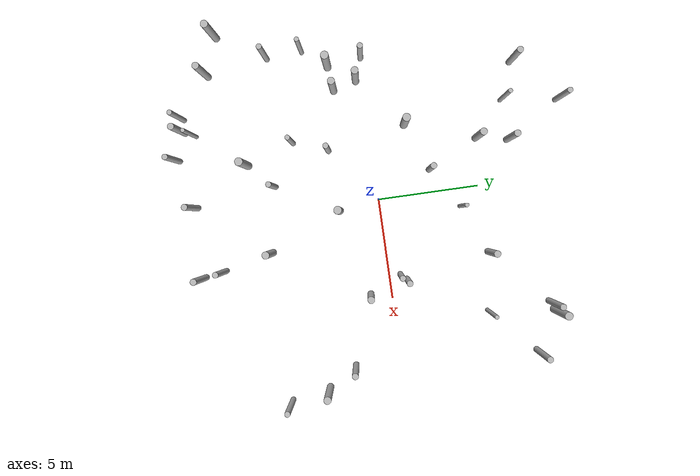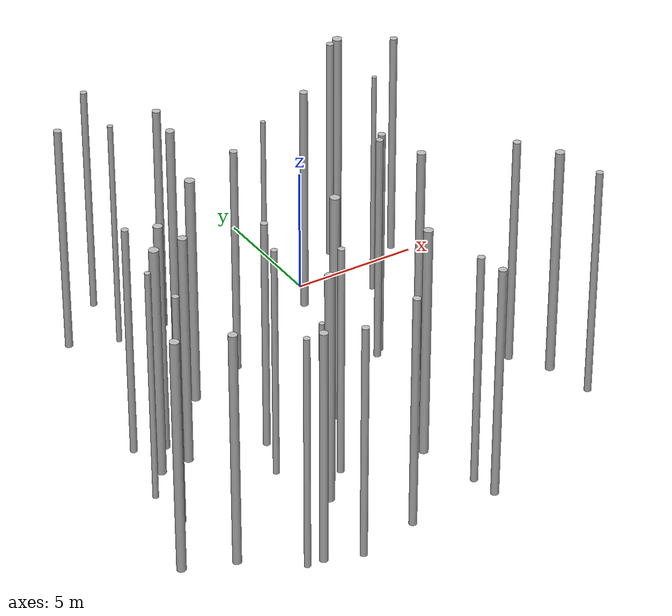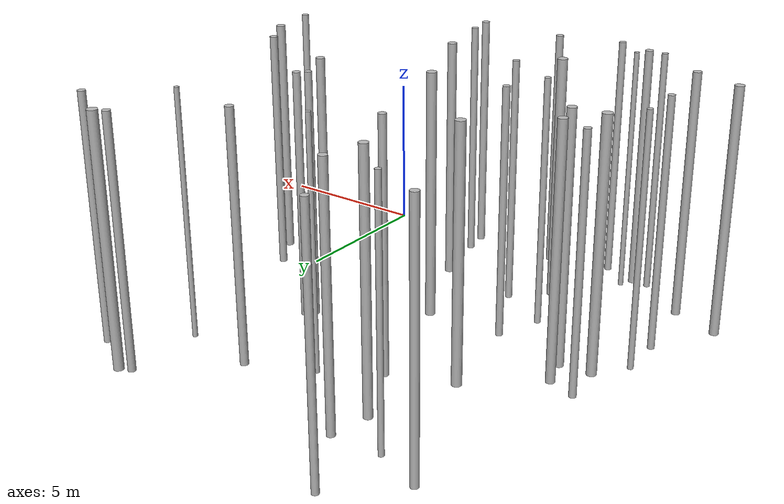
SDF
<sdf version="1.4">
 <world name="default">
  <scene><shadows>false</shadows></scene>
  <model name="forest">
   <static>true</static>
   <link name="tree0">
    <pose>-3.7054690622155873 1.866800743826948 0 0 0 5.804549705480051</pose>
    <visual name="visual">
     <material>
      <script><uri>model://tree_simple/scripts</uri><uri>model://tree_simple/materials/textures</uri></script>
     </material>
     <geometry><cylinder><radius>0.19890831710415502</radius><length>10</length></cylinder></geometry>
    </visual>
    <collision name="collision">
     <geometry><cylinder><radius>0.19890831710415502</radius><length>10</length></cylinder></geometry>
     <max_contacts>0</max_contacts>
    </collision>
   </link>
   <link name="tree1">
    <pose>-2.714504667197078 -6.461140196826831 0 0 0 3.347703830257915</pose>
    <visual name="visual">
     <material>
      <script><uri>model://tree_simple/scripts</uri><uri>model://tree_simple/materials/textures</uri></script>
     </material>
     <geometry><cylinder><radius>0.19965619902999285</radius><length>10</length></cylinder></geometry>
    </visual>
    <collision name="collision">
     <geometry><cylinder><radius>0.19965619902999285</radius><length>10</length></cylinder></geometry>
     <max_contacts>0</max_contacts>
    </collision>
   </link>
   <link name="tree2">
    <pose>-6.301222954647521 -0.303916810994739 0 0 0 1.6390963417453464</pose>
    <visual name="visual">
     <material>
      <script><uri>model://tree_simple/scripts</uri><uri>model://tree_simple/materials/textures</uri></script>
     </material>
     <geometry><cylinder><radius>0.18194292359758646</radius><length>10</length></cylinder></geometry>
    </visual>
    <collision name="collision">
     <geometry><cylinder><radius>0.18194292359758646</radius><length>10</length></cylinder></geometry>
     <max_contacts>0</max_contacts>
    </collision>
   </link>
   <link name="tree3">
    <pose>3.438585030909307 5.290952545253651 0 0 0 0.5235706975836255</pose>
    <visual name="visual">
     <material>
      <script><uri>model://tree_simple/scripts</uri><uri>model://tree_simple/materials/textures</uri></script>
     </material>
     <geometry><cylinder><radius>0.16524153091901406</radius><length>10</length></cylinder></geometry>
    </visual>
    <collision name="collision">
     <geometry><cylinder><radius>0.16524153091901406</radius><length>10</length></cylinder></geometry>
     <max_contacts>0</max_contacts>
    </collision>
   </link>
   <link name="tree4">
    <pose>8.84868305739024 7.101177344443421 0 0 0 1.6796642341159929</pose>
    <visual name="visual">
     <material>
      <script><uri>model://tree_simple/scripts</uri><uri>model://tree_simple/materials/textures</uri></script>
     </material>
     <geometry><cylinder><radius>0.15391808578517832</radius><length>10</length></cylinder></geometry>
    </visual>
    <collision name="collision">
     <geometry><cylinder><radius>0.15391808578517832</radius><length>10</length></cylinder></geometry>
     <max_contacts>0</max_contacts>
    </collision>
   </link>
   <link name="tree5">
    <pose>-2.203271638021964 7.068457619246292 0 0 0 4.871302215672386</pose>
    <visual name="visual">
     <material>
      <script><uri>model://tree_simple/scripts</uri><uri>model://tree_simple/materials/textures</uri></script>
     </material>
     <geometry><cylinder><radius>0.16437061227792388</radius><length>10</length></cylinder></geometry>
    </visual>
    <collision name="collision">
     <geometry><cylinder><radius>0.16437061227792388</radius><length>10</length></cylinder></geometry>
     <max_contacts>0</max_contacts>
    </collision>
   </link>
   <link name="tree6">
    <pose>-9.531246761644619 -7.186104687811863 0 0 0 1.4221703616563786</pose>
    <visual name="visual">
     <material>
      <script><uri>model://tree_simple/scripts</uri><uri>model://tree_simple/materials/textures</uri></script>
     </material>
     <geometry><cylinder><radius>0.1851797984901979</radius><length>10</length></cylinder></geometry>
    </visual>
    <collision name="collision">
     <geometry><cylinder><radius>0.1851797984901979</radius><length>10</length></cylinder></geometry>
     <max_contacts>0</max_contacts>
    </collision>
   </link>
   <link name="tree7">
    <pose>-7.231862262141025 -1.6494307902408316 0 0 0 4.610970842492324</pose>
    <visual name="visual">
     <material>
      <script><uri>model://tree_simple/scripts</uri><uri>model://tree_simple/materials/textures</uri></script>
     </material>
     <geometry><cylinder><radius>0.1981163060144035</radius><length>10</length></cylinder></geometry>
    </visual>
    <collision name="collision">
     <geometry><cylinder><radius>0.1981163060144035</radius><length>10</length></cylinder></geometry>
     <max_contacts>0</max_contacts>
    </collision>
   </link>
   <link name="tree8">
    <pose>-1.4274124206023924 -5.192854360500723 0 0 0 0.9032130742766348</pose>
    <visual name="visual">
     <material>
      <script><uri>model://tree_simple/scripts</uri><uri>model://tree_simple/materials/textures</uri></script>
     </material>
     <geometry><cylinder><radius>0.13886989372928207</radius><length>10</length></cylinder></geometry>
    </visual>
    <collision name="collision">
     <geometry><cylinder><radius>0.13886989372928207</radius><length>10</length></cylinder></geometry>
     <max_contacts>0</max_contacts>
    </collision>
   </link>
   <link name="tree9">
    <pose>-4.853930498597037 -9.465449644623023 0 0 0 0.08788762137628149</pose>
    <visual name="visual">
     <material>
      <script><uri>model://tree_simple/scripts</uri><uri>model://tree_simple/materials/textures</uri></script>
     </material>
     <geometry><cylinder><radius>0.164518036162344</radius><length>10</length></cylinder></geometry>
    </visual>
    <collision name="collision">
     <geometry><cylinder><radius>0.164518036162344</radius><length>10</length></cylinder></geometry>
     <max_contacts>0</max_contacts>
    </collision>
   </link>
   <link name="tree10">
    <pose>6.455557795365433 4.83991575597533 0 0 0 3.74936611095947</pose>
    <visual name="visual">
     <material>
      <script><uri>model://tree_simple/scripts</uri><uri>model://tree_simple/materials/textures</uri></script>
     </material>
     <geometry><cylinder><radius>0.10195199367516689</radius><length>10</length></cylinder></geometry>
    </visual>
    <collision name="collision">
     <geometry><cylinder><radius>0.10195199367516689</radius><length>10</length></cylinder></geometry>
     <max_contacts>0</max_contacts>
    </collision>
   </link>
   <link name="tree11">
    <pose>1.9475635512469385 -5.802271606525203 0 0 0 2.376130627063933</pose>
    <visual name="visual">
     <material>
      <script><uri>model://tree_simple/scripts</uri><uri>model://tree_simple/materials/textures</uri></script>
     </material>
     <geometry><cylinder><radius>0.18403978422131714</radius><length>10</length></cylinder></geometry>
    </visual>
    <collision name="collision">
     <geometry><cylinder><radius>0.18403978422131714</radius><length>10</length></cylinder></geometry>
     <max_contacts>0</max_contacts>
    </collision>
   </link>
   <link name="tree12">
    <pose>6.889439658202964 8.289270975436235 0 0 0 1.8561052450899536</pose>
    <visual name="visual">
     <material>
      <script><uri>model://tree_simple/scripts</uri><uri>model://tree_simple/materials/textures</uri></script>
     </material>
     <geometry><cylinder><radius>0.1993785757445766</radius><length>10</length></cylinder></geometry>
    </visual>
    <collision name="collision">
     <geometry><cylinder><radius>0.1993785757445766</radius><length>10</length></cylinder></geometry>
     <max_contacts>0</max_contacts>
    </collision>
   </link>
   <link name="tree13">
    <pose>2.7381119747175156 -9.435312867774464 0 0 0 1.2373634190251286</pose>
    <visual name="visual">
     <material>
      <script><uri>model://tree_simple/scripts</uri><uri>model://tree_simple/materials/textures</uri></script>
     </material>
     <geometry><cylinder><radius>0.16102620036566262</radius><length>10</length></cylinder></geometry>
    </visual>
    <collision name="collision">
     <geometry><cylinder><radius>0.16102620036566262</radius><length>10</length></cylinder></geometry>
     <max_contacts>0</max_contacts>
    </collision>
   </link>
   <link name="tree14">
    <pose>6.420924253008337 8.079671313987475 0 0 0 2.5298067317571733</pose>
    <visual name="visual">
     <material>
      <script><uri>model://tree_simple/scripts</uri><uri>model://tree_simple/materials/textures</uri></script>
     </material>
     <geometry><cylinder><radius>0.1565289312874229</radius><length>10</length></cylinder></geometry>
    </visual>
    <collision name="collision">
     <geometry><cylinder><radius>0.1565289312874229</radius><length>10</length></cylinder></geometry>
     <max_contacts>0</max_contacts>
    </collision>
   </link>
   <link name="tree15">
    <pose>-4.5934208573830055 -8.923357269711508 0 0 0 5.396048967261554</pose>
    <visual name="visual">
     <material>
      <script><uri>model://tree_simple/scripts</uri><uri>model://tree_simple/materials/textures</uri></script>
     </material>
     <geometry><cylinder><radius>0.10234378218040922</radius><length>10</length></cylinder></geometry>
    </visual>
    <collision name="collision">
     <geometry><cylinder><radius>0.10234378218040922</radius><length>10</length></cylinder></geometry>
     <max_contacts>0</max_contacts>
    </collision>
   </link>
   <link name="tree16">
    <pose>-4.283839005692622 7.010485256660907 0 0 0 5.174875145170499</pose>
    <visual name="visual">
     <material>
      <script><uri>model://tree_simple/scripts</uri><uri>model://tree_simple/materials/textures</uri></script>
     </material>
     <geometry><cylinder><radius>0.11093789543547852</radius><length>10</length></cylinder></geometry>
    </visual>
    <collision name="collision">
     <geometry><cylinder><radius>0.11093789543547852</radius><length>10</length></cylinder></geometry>
     <max_contacts>0</max_contacts>
    </collision>
   </link>
   <link name="tree17">
    <pose>-5.5360661226286245 -9.436645756245179 0 0 0 4.990288704790513</pose>
    <visual name="visual">
     <material>
      <script><uri>model://tree_simple/scripts</uri><uri>model://tree_simple/materials/textures</uri></script>
     </material>
     <geometry><cylinder><radius>0.12848629049004398</radius><length>10</length></cylinder></geometry>
    </visual>
    <collision name="collision">
     <geometry><cylinder><radius>0.12848629049004398</radius><length>10</length></cylinder></geometry>
     <max_contacts>0</max_contacts>
    </collision>
   </link>
   <link name="tree18">
    <pose>0.2708712528756507 -2.0566666993176375 0 0 0 2.1058728190397846</pose>
    <visual name="visual">
     <material>
      <script><uri>model://tree_simple/scripts</uri><uri>model://tree_simple/materials/textures</uri></script>
     </material>
     <geometry><cylinder><radius>0.1990139393591296</radius><length>10</length></cylinder></geometry>
    </visual>
    <collision name="collision">
     <geometry><cylinder><radius>0.1990139393591296</radius><length>10</length></cylinder></geometry>
     <max_contacts>0</max_contacts>
    </collision>
   </link>
   <link name="tree19">
    <pose>-7.452867548770183 0.10912986858536478 0 0 0 4.180786531775639</pose>
    <visual name="visual">
     <material>
      <script><uri>model://tree_simple/scripts</uri><uri>model://tree_simple/materials/textures</uri></script>
     </material>
     <geometry><cylinder><radius>0.14128204657065474</radius><length>10</length></cylinder></geometry>
    </visual>
    <collision name="collision">
     <geometry><cylinder><radius>0.14128204657065474</radius><length>10</length></cylinder></geometry>
     <max_contacts>0</max_contacts>
    </collision>
   </link>
   <link name="tree20">
    <pose>-3.910451301342988 9.86589697180268 0 0 0 6.2198469161259435</pose>
    <visual name="visual">
     <material>
      <script><uri>model://tree_simple/scripts</uri><uri>model://tree_simple/materials/textures</uri></script>
     </material>
     <geometry><cylinder><radius>0.13753232479944943</radius><length>10</length></cylinder></geometry>
    </visual>
    <collision name="collision">
     <geometry><cylinder><radius>0.13753232479944943</radius><length>10</length></cylinder></geometry>
     <max_contacts>0</max_contacts>
    </collision>
   </link>
   <link name="tree21">
    <pose>8.338139917241481 -2.3268387250528804 0 0 0 0.45185401527890384</pose>
    <visual name="visual">
     <material>
      <script><uri>model://tree_simple/scripts</uri><uri>model://tree_simple/materials/textures</uri></script>
     </material>
     <geometry><cylinder><radius>0.15896364506064098</radius><length>10</length></cylinder></geometry>
    </visual>
    <collision name="collision">
     <geometry><cylinder><radius>0.15896364506064098</radius><length>10</length></cylinder></geometry>
     <max_contacts>0</max_contacts>
    </collision>
   </link>
   <link name="tree22">
    <pose>4.266702341879341 0.9141053942331716 0 0 0 1.886590583057293</pose>
    <visual name="visual">
     <material>
      <script><uri>model://tree_simple/scripts</uri><uri>model://tree_simple/materials/textures</uri></script>
     </material>
     <geometry><cylinder><radius>0.15347416692821353</radius><length>10</length></cylinder></geometry>
    </visual>
    <collision name="collision">
     <geometry><cylinder><radius>0.15347416692821353</radius><length>10</length></cylinder></geometry>
     <max_contacts>0</max_contacts>
    </collision>
   </link>
   <link name="tree23">
    <pose>9.295183651574174 -3.817348914111493 0 0 0 2.4666811334233394</pose>
    <visual name="visual">
     <material>
      <script><uri>model://tree_simple/scripts</uri><uri>model://tree_simple/materials/textures</uri></script>
     </material>
     <geometry><cylinder><radius>0.18723929889718585</radius><length>10</length></cylinder></geometry>
    </visual>
    <collision name="collision">
     <geometry><cylinder><radius>0.18723929889718585</radius><length>10</length></cylinder></geometry>
     <max_contacts>0</max_contacts>
    </collision>
   </link>
   <link name="tree24">
    <pose>-3.5447045322794697 -3.973127934266083 0 0 0 1.1975225780239458</pose>
    <visual name="visual">
     <material>
      <script><uri>model://tree_simple/scripts</uri><uri>model://tree_simple/materials/textures</uri></script>
     </material>
     <geometry><cylinder><radius>0.12630186284630984</radius><length>10</length></cylinder></geometry>
    </visual>
    <collision name="collision">
     <geometry><cylinder><radius>0.12630186284630984</radius><length>10</length></cylinder></geometry>
     <max_contacts>0</max_contacts>
    </collision>
   </link>
   <link name="tree25">
    <pose>-2.893783611945018 -2.2016560137534524 0 0 0 1.928226780229241</pose>
    <visual name="visual">
     <material>
      <script><uri>model://tree_simple/scripts</uri><uri>model://tree_simple/materials/textures</uri></script>
     </material>
     <geometry><cylinder><radius>0.1422575914137835</radius><length>10</length></cylinder></geometry>
    </visual>
    <collision name="collision">
     <geometry><cylinder><radius>0.1422575914137835</radius><length>10</length></cylinder></geometry>
     <max_contacts>0</max_contacts>
    </collision>
   </link>
   <link name="tree26">
    <pose>-0.9008178929304744 -9.362800066676563 0 0 0 2.5518432739410724</pose>
    <visual name="visual">
     <material>
      <script><uri>model://tree_simple/scripts</uri><uri>model://tree_simple/materials/textures</uri></script>
     </material>
     <geometry><cylinder><radius>0.15531386510358816</radius><length>10</length></cylinder></geometry>
    </visual>
    <collision name="collision">
     <geometry><cylinder><radius>0.15531386510358816</radius><length>10</length></cylinder></geometry>
     <max_contacts>0</max_contacts>
    </collision>
   </link>
   <link name="tree27">
    <pose>-7.5937778499204605 -7.882558049670529 0 0 0 0.46870155765617305</pose>
    <visual name="visual">
     <material>
      <script><uri>model://tree_simple/scripts</uri><uri>model://tree_simple/materials/textures</uri></script>
     </material>
     <geometry><cylinder><radius>0.17198261410530769</radius><length>10</length></cylinder></geometry>
    </visual>
    <collision name="collision">
     <geometry><cylinder><radius>0.17198261410530769</radius><length>10</length></cylinder></geometry>
     <max_contacts>0</max_contacts>
    </collision>
   </link>
   <link name="tree28">
    <pose>-1.2161035527226822 2.8409261727583424 0 0 0 5.907037634819751</pose>
    <visual name="visual">
     <material>
      <script><uri>model://tree_simple/scripts</uri><uri>model://tree_simple/materials/textures</uri></script>
     </material>
     <geometry><cylinder><radius>0.15326953047852873</radius><length>10</length></cylinder></geometry>
    </visual>
    <collision name="collision">
     <geometry><cylinder><radius>0.15326953047852873</radius><length>10</length></cylinder></geometry>
     <max_contacts>0</max_contacts>
    </collision>
   </link>
   <link name="tree29">
    <pose>2.5508544602590426 -8.338694459053773 0 0 0 3.160731220425118</pose>
    <visual name="visual">
     <material>
      <script><uri>model://tree_simple/scripts</uri><uri>model://tree_simple/materials/textures</uri></script>
     </material>
     <geometry><cylinder><radius>0.14586781289035686</radius><length>10</length></cylinder></geometry>
    </visual>
    <collision name="collision">
     <geometry><cylinder><radius>0.14586781289035686</radius><length>10</length></cylinder></geometry>
     <max_contacts>0</max_contacts>
    </collision>
   </link>
   <link name="tree30">
    <pose>-2.5086625442204413 5.4606794947650865 0 0 0 3.7380853379301455</pose>
    <visual name="visual">
     <material>
      <script><uri>model://tree_simple/scripts</uri><uri>model://tree_simple/materials/textures</uri></script>
     </material>
     <geometry><cylinder><radius>0.1773936084655932</radius><length>10</length></cylinder></geometry>
    </visual>
    <collision name="collision">
     <geometry><cylinder><radius>0.1773936084655932</radius><length>10</length></cylinder></geometry>
     <max_contacts>0</max_contacts>
    </collision>
   </link>
   <link name="tree31">
    <pose>-8.081830570323774 -4.723074394196867 0 0 0 1.0403125674210436</pose>
    <visual name="visual">
     <material>
      <script><uri>model://tree_simple/scripts</uri><uri>model://tree_simple/materials/textures</uri></script>
     </material>
     <geometry><cylinder><radius>0.13791890149521235</radius><length>10</length></cylinder></geometry>
    </visual>
    <collision name="collision">
     <geometry><cylinder><radius>0.13791890149521235</radius><length>10</length></cylinder></geometry>
     <max_contacts>0</max_contacts>
    </collision>
   </link>
   <link name="tree32">
    <pose>-3.441274926482274 -9.956121382828776 0 0 0 1.161166670004765</pose>
    <visual name="visual">
     <material>
      <script><uri>model://tree_simple/scripts</uri><uri>model://tree_simple/materials/textures</uri></script>
     </material>
     <geometry><cylinder><radius>0.14328890727146792</radius><length>10</length></cylinder></geometry>
    </visual>
    <collision name="collision">
     <geometry><cylinder><radius>0.14328890727146792</radius><length>10</length></cylinder></geometry>
     <max_contacts>0</max_contacts>
    </collision>
   </link>
   <link name="tree33">
    <pose>0.8913501218721507 4.161765114459204 0 0 0 4.3016920054215255</pose>
    <visual name="visual">
     <material>
      <script><uri>model://tree_simple/scripts</uri><uri>model://tree_simple/materials/textures</uri></script>
     </material>
     <geometry><cylinder><radius>0.10103003679176285</radius><length>10</length></cylinder></geometry>
    </visual>
    <collision name="collision">
     <geometry><cylinder><radius>0.10103003679176285</radius><length>10</length></cylinder></geometry>
     <max_contacts>0</max_contacts>
    </collision>
   </link>
   <link name="tree34">
    <pose>4.789984818877686 -1.0538663676642166 0 0 0 6.058045444350475</pose>
    <visual name="visual">
     <material>
      <script><uri>model://tree_simple/scripts</uri><uri>model://tree_simple/materials/textures</uri></script>
     </material>
     <geometry><cylinder><radius>0.17468578052638495</radius><length>10</length></cylinder></geometry>
    </visual>
    <collision name="collision">
     <geometry><cylinder><radius>0.17468578052638495</radius><length>10</length></cylinder></geometry>
     <max_contacts>0</max_contacts>
    </collision>
   </link>
   <link name="tree35">
    <pose>-5.9565990671560165 -1.505467219172786 0 0 0 1.7736521000448648</pose>
    <visual name="visual">
     <material>
      <script><uri>model://tree_simple/scripts</uri><uri>model://tree_simple/materials/textures</uri></script>
     </material>
     <geometry><cylinder><radius>0.18146670392839973</radius><length>10</length></cylinder></geometry>
    </visual>
    <collision name="collision">
     <geometry><cylinder><radius>0.18146670392839973</radius><length>10</length></cylinder></geometry>
     <max_contacts>0</max_contacts>
    </collision>
   </link>
   <link name="tree36">
    <pose>-6.179537843427438 7.75560056815522 0 0 0 1.4337396020931585</pose>
    <visual name="visual">
     <material>
      <script><uri>model://tree_simple/scripts</uri><uri>model://tree_simple/materials/textures</uri></script>
     </material>
     <geometry><cylinder><radius>0.15768027839172583</radius><length>10</length></cylinder></geometry>
    </visual>
    <collision name="collision">
     <geometry><cylinder><radius>0.15768027839172583</radius><length>10</length></cylinder></geometry>
     <max_contacts>0</max_contacts>
    </collision>
   </link>
   <link name="tree37">
    <pose>9.683999099128112 -5.827540342786555 0 0 0 4.428906603922083</pose>
    <visual name="visual">
     <material>
      <script><uri>model://tree_simple/scripts</uri><uri>model://tree_simple/materials/textures</uri></script>
     </material>
     <geometry><cylinder><radius>0.14471680046822744</radius><length>10</length></cylinder></geometry>
    </visual>
    <collision name="collision">
     <geometry><cylinder><radius>0.14471680046822744</radius><length>10</length></cylinder></geometry>
     <max_contacts>0</max_contacts>
    </collision>
   </link>
   <link name="tree38">
    <pose>3.972149704490489 0.6036308042420373 0 0 0 2.9869563589927917</pose>
    <visual name="visual">
     <material>
      <script><uri>model://tree_simple/scripts</uri><uri>model://tree_simple/materials/textures</uri></script>
     </material>
     <geometry><cylinder><radius>0.14565509481928976</radius><length>10</length></cylinder></geometry>
    </visual>
    <collision name="collision">
     <geometry><cylinder><radius>0.14565509481928976</radius><length>10</length></cylinder></geometry>
     <max_contacts>0</max_contacts>
    </collision>
   </link>
   <link name="tree39">
    <pose>-8.177525938567191 -2.8789461850776643 0 0 0 0.08803981861975943</pose>
    <visual name="visual">
     <material>
      <script><uri>model://tree_simple/scripts</uri><uri>model://tree_simple/materials/textures</uri></script>
     </material>
     <geometry><cylinder><radius>0.1154710697976435</radius><length>10</length></cylinder></geometry>
    </visual>
    <collision name="collision">
     <geometry><cylinder><radius>0.1154710697976435</radius><length>10</length></cylinder></geometry>
     <max_contacts>0</max_contacts>
    </collision>
   </link>
  </model>
  <plugin name="mrs_gazebo_link_attacher_plugin" filename="libMrsGazeboCommonResources_StaticTransformRepublisher.so"/>
  <plugin name="mrs_gazebo_rviz_cam_synchronizer" filename="libMrsGazeboCommonResources_RvizCameraSynchronizer.so"/>
  <physics name="default_physics" default="0" type="ode">
   <max_step_size>0.004</max_step_size>
   <real_time_factor>1</real_time_factor>
   <real_time_update_rate>250</real_time_update_rate>
   <gravity>0 0 -9.8066</gravity>
   <magnetic_field>6e-06 2.3e-05 -4.2e-05</magnetic_field>
   <ode>
    <solver>
     <type>quick</type>
     <iters>10</iters>
     <sor>1.3</sor>
     <use_dynamic_moi_rescaling>0</use_dynamic_moi_rescaling>
    </solver>
    <constraints>
     <cfm>0</cfm>
     <erp>0.2</erp>
     <contact_max_correcting_vel>1000</contact_max_correcting_vel>
     <contact_surface_layer>0.001</contact_surface_layer>
    </constraints>
   </ode>
  </physics>
  <spherical_coordinates>
   <surface_model>EARTH_WGS84</surface_model>
   <latitude_deg>47.397743</latitude_deg>
   <longitude_deg>8.545594</longitude_deg>
   <elevation>0.0</elevation>
   <heading_deg>0</heading_deg>
  </spherical_coordinates>
  <light name="sun" type="directional">
   <pose>0 0 1000 0.4 0.2 0</pose>
   <specular>0.6 0.6 0.6 1</specular>
   <direction>0.1 0.1 -0.9</direction>
   <attenuation>
    <range>20</range>
    <constant>0.5</constant>
    <linear>0.01</linear>
    <quadratic>0.001</quadratic>
   </attenuation>
  </light>
 </world>
</sdf>
